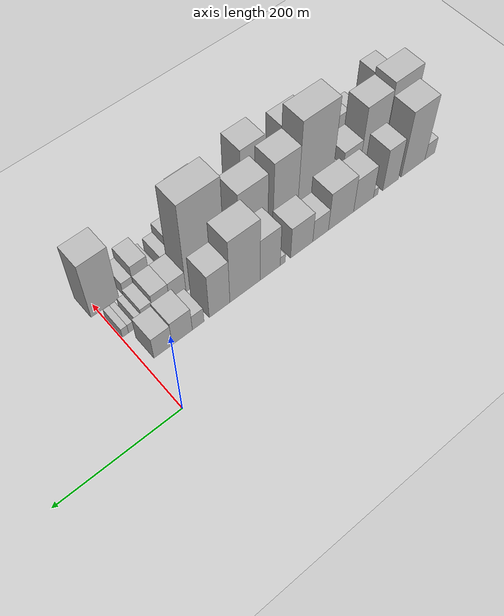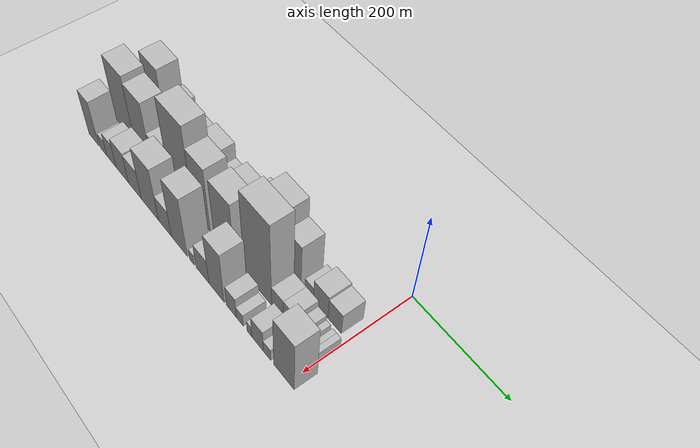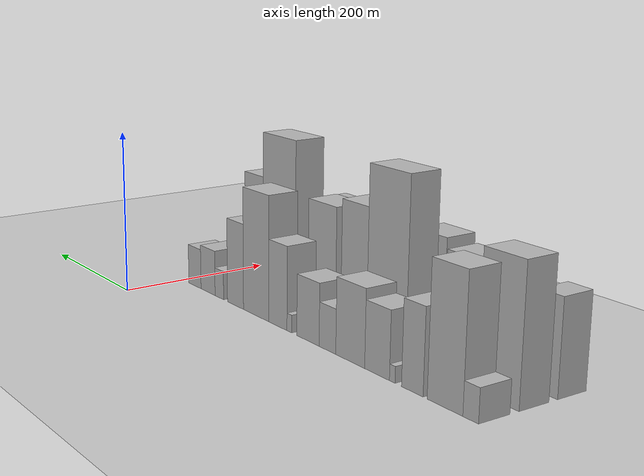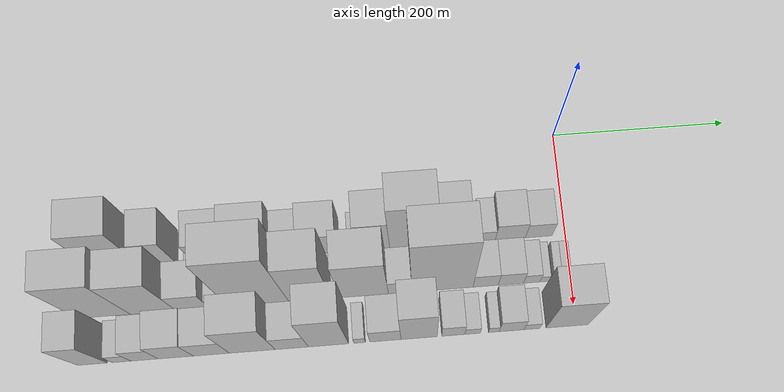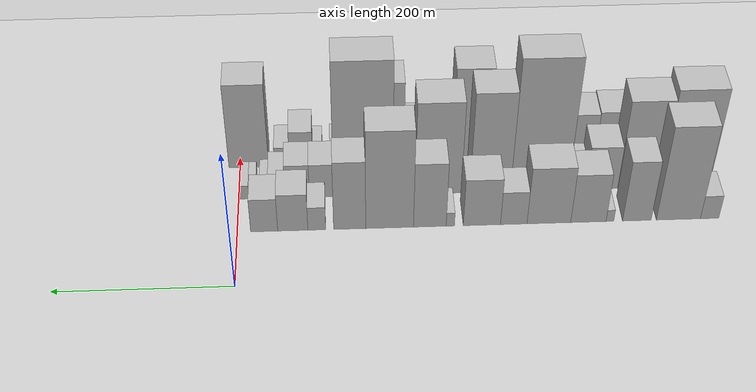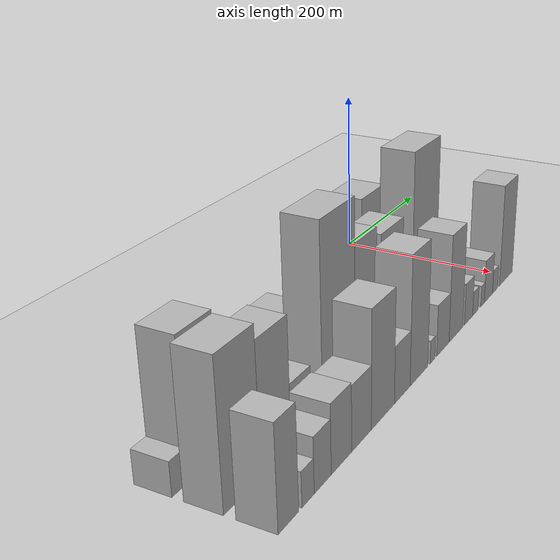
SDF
<sdf version="1.6">
 <world name="default">
  <include><name>ground_plane_1</name><uri>model://HANNAS_ground_plane</uri></include>
  <model name="building_1">
   <static>1</static>
   <pose>100.0000 -537.4205 0 0.000000 0.000000 0.000000</pose>
   <link name="link">
    <pose>0 0 18.00 0 0 0</pose>
    <collision name="collision"><geometry><box><size>40.0000 21.1590 36.0000</size></box></geometry></collision>
    <visual name="visual">
     <cast_shadows>0</cast_shadows>
     <geometry><box><size>40.0000 21.1590 36.0000</size></box></geometry>
     <material>
      <script>
       <uri>model://HANNAS_wall/materials/scripts</uri>
       <uri>model://HANNAS_wall/materials/textures</uri>
       <name>vrc/HANNAS_wall</name>
      </script>
     </material>
    </visual>
   </link>
  </model>
  <model name="building_2">
   <static>1</static>
   <pose>100.0000 -501.5422 0 0.000000 0.000000 0.000000</pose>
   <link name="link">
    <pose>0 0 72.00 0 0 0</pose>
    <collision name="collision"><geometry><box><size>40.0000 50.5977 144.0000</size></box></geometry></collision>
    <visual name="visual">
     <cast_shadows>0</cast_shadows>
     <geometry><box><size>40.0000 50.5977 144.0000</size></box></geometry>
     <material>
      <script>
       <uri>model://HANNAS_wall/materials/scripts</uri>
       <uri>model://HANNAS_wall/materials/textures</uri>
       <name>vrc/HANNAS_wall</name>
      </script>
     </material>
    </visual>
   </link>
  </model>
  <model name="building_3">
   <static>1</static>
   <pose>100.0000 -453.8907 0 0.000000 0.000000 0.000000</pose>
   <link name="link">
    <pose>0 0 46.50 0 0 0</pose>
    <collision name="collision"><geometry><box><size>40.0000 32.7053 93.0000</size></box></geometry></collision>
    <visual name="visual">
     <cast_shadows>0</cast_shadows>
     <geometry><box><size>40.0000 32.7053 93.0000</size></box></geometry>
     <material>
      <script>
       <uri>model://HANNAS_wall/materials/scripts</uri>
       <uri>model://HANNAS_wall/materials/textures</uri>
       <name>vrc/HANNAS_wall</name>
      </script>
     </material>
    </visual>
   </link>
  </model>
  <model name="building_4">
   <static>1</static>
   <pose>100.0000 -423.0930 0 0.000000 0.000000 0.000000</pose>
   <link name="link">
    <pose>0 0 9.00 0 0 0</pose>
    <collision name="collision"><geometry><box><size>40.0000 8.8902 18.0000</size></box></geometry></collision>
    <visual name="visual">
     <cast_shadows>0</cast_shadows>
     <geometry><box><size>40.0000 8.8902 18.0000</size></box></geometry>
     <material>
      <script>
       <uri>model://HANNAS_wall/materials/scripts</uri>
       <uri>model://HANNAS_wall/materials/textures</uri>
       <name>vrc/HANNAS_wall</name>
      </script>
     </material>
    </visual>
   </link>
  </model>
  <model name="building_5">
   <static>1</static>
   <pose>100.0000 -398.4625 0 0.000000 0.000000 0.000000</pose>
   <link name="link">
    <pose>0 0 37.50 0 0 0</pose>
    <collision name="collision"><geometry><box><size>40.0000 40.3708 75.0000</size></box></geometry></collision>
    <visual name="visual">
     <cast_shadows>0</cast_shadows>
     <geometry><box><size>40.0000 40.3708 75.0000</size></box></geometry>
     <material>
      <script>
       <uri>model://HANNAS_wall/materials/scripts</uri>
       <uri>model://HANNAS_wall/materials/textures</uri>
       <name>vrc/HANNAS_wall</name>
      </script>
     </material>
    </visual>
   </link>
  </model>
  <model name="building_6">
   <static>1</static>
   <pose>100.0000 -353.3126 0 0.000000 0.000000 0.000000</pose>
   <link name="link">
    <pose>0 0 43.50 0 0 0</pose>
    <collision name="collision"><geometry><box><size>40.0000 49.9289 87.0000</size></box></geometry></collision>
    <visual name="visual">
     <cast_shadows>0</cast_shadows>
     <geometry><box><size>40.0000 49.9289 87.0000</size></box></geometry>
     <material>
      <script>
       <uri>model://HANNAS_wall/materials/scripts</uri>
       <uri>model://HANNAS_wall/materials/textures</uri>
       <name>vrc/HANNAS_wall</name>
      </script>
     </material>
    </visual>
   </link>
  </model>
  <model name="building_7">
   <static>1</static>
   <pose>100.0000 -313.2135 0 0.000000 0.000000 0.000000</pose>
   <link name="link">
    <pose>0 0 25.50 0 0 0</pose>
    <collision name="collision"><geometry><box><size>40.0000 30.2694 51.0000</size></box></geometry></collision>
    <visual name="visual">
     <cast_shadows>0</cast_shadows>
     <geometry><box><size>40.0000 30.2694 51.0000</size></box></geometry>
     <material>
      <script>
       <uri>model://HANNAS_wall/materials/scripts</uri>
       <uri>model://HANNAS_wall/materials/textures</uri>
       <name>vrc/HANNAS_wall</name>
      </script>
     </material>
    </visual>
   </link>
  </model>
  <model name="building_8">
   <static>1</static>
   <pose>100.0000 -276.9280 0 0.000000 0.000000 0.000000</pose>
   <link name="link">
    <pose>0 0 36.00 0 0 0</pose>
    <collision name="collision"><geometry><box><size>40.0000 42.3017 72.0000</size></box></geometry></collision>
    <visual name="visual">
     <cast_shadows>0</cast_shadows>
     <geometry><box><size>40.0000 42.3017 72.0000</size></box></geometry>
     <material>
      <script>
       <uri>model://HANNAS_wall/materials/scripts</uri>
       <uri>model://HANNAS_wall/materials/textures</uri>
       <name>vrc/HANNAS_wall</name>
      </script>
     </material>
    </visual>
   </link>
  </model>
  <model name="building_9">
   <static>1</static>
   <pose>100.0000 -241.0369 0 0.000000 0.000000 0.000000</pose>
   <link name="link">
    <pose>0 0 10.50 0 0 0</pose>
    <collision name="collision"><geometry><box><size>40.0000 9.4805 21.0000</size></box></geometry></collision>
    <visual name="visual">
     <cast_shadows>0</cast_shadows>
     <geometry><box><size>40.0000 9.4805 21.0000</size></box></geometry>
     <material>
      <script>
       <uri>model://HANNAS_wall/materials/scripts</uri>
       <uri>model://HANNAS_wall/materials/textures</uri>
       <name>vrc/HANNAS_wall</name>
      </script>
     </material>
    </visual>
   </link>
  </model>
  <model name="building_10">
   <static>1</static>
   <pose>100.0000 -217.7313 0 0.000000 0.000000 0.000000</pose>
   <link name="link">
    <pose>0 0 49.50 0 0 0</pose>
    <collision name="collision"><geometry><box><size>40.0000 37.1306 99.0000</size></box></geometry></collision>
    <visual name="visual">
     <cast_shadows>0</cast_shadows>
     <geometry><box><size>40.0000 37.1306 99.0000</size></box></geometry>
     <material>
      <script>
       <uri>model://HANNAS_wall/materials/scripts</uri>
       <uri>model://HANNAS_wall/materials/textures</uri>
       <name>vrc/HANNAS_wall</name>
      </script>
     </material>
    </visual>
   </link>
  </model>
  <model name="building_11">
   <static>1</static>
   <pose>100.0000 -172.0559 0 0.000000 0.000000 0.000000</pose>
   <link name="link">
    <pose>0 0 75.00 0 0 0</pose>
    <collision name="collision"><geometry><box><size>40.0000 54.2202 150.0000</size></box></geometry></collision>
    <visual name="visual">
     <cast_shadows>0</cast_shadows>
     <geometry><box><size>40.0000 54.2202 150.0000</size></box></geometry>
     <material>
      <script>
       <uri>model://HANNAS_wall/materials/scripts</uri>
       <uri>model://HANNAS_wall/materials/textures</uri>
       <name>vrc/HANNAS_wall</name>
      </script>
     </material>
    </visual>
   </link>
  </model>
  <model name="building_12">
   <static>1</static>
   <pose>100.0000 -126.8319 0 0.000000 0.000000 0.000000</pose>
   <link name="link">
    <pose>0 0 52.50 0 0 0</pose>
    <collision name="collision"><geometry><box><size>40.0000 36.2277 105.0000</size></box></geometry></collision>
    <visual name="visual">
     <cast_shadows>0</cast_shadows>
     <geometry><box><size>40.0000 36.2277 105.0000</size></box></geometry>
     <material>
      <script>
       <uri>model://HANNAS_wall/materials/scripts</uri>
       <uri>model://HANNAS_wall/materials/textures</uri>
       <name>vrc/HANNAS_wall</name>
      </script>
     </material>
    </visual>
   </link>
  </model>
  <model name="building_13">
   <static>1</static>
   <pose>100.0000 -89.6416 0 0.000000 0.000000 0.000000</pose>
   <link name="link">
    <pose>0 0 18.00 0 0 0</pose>
    <collision name="collision"><geometry><box><size>40.0000 20.1530 36.0000</size></box></geometry></collision>
    <visual name="visual">
     <cast_shadows>0</cast_shadows>
     <geometry><box><size>40.0000 20.1530 36.0000</size></box></geometry>
     <material>
      <script>
       <uri>model://HANNAS_wall/materials/scripts</uri>
       <uri>model://HANNAS_wall/materials/textures</uri>
       <name>vrc/HANNAS_wall</name>
      </script>
     </material>
    </visual>
   </link>
  </model>
  <model name="building_14">
   <static>1</static>
   <pose>100.0000 -62.5326 0 0.000000 0.000000 0.000000</pose>
   <link name="link">
    <pose>0 0 28.50 0 0 0</pose>
    <collision name="collision"><geometry><box><size>40.0000 34.0651 57.0000</size></box></geometry></collision>
    <visual name="visual">
     <cast_shadows>0</cast_shadows>
     <geometry><box><size>40.0000 34.0651 57.0000</size></box></geometry>
     <material>
      <script>
       <uri>model://HANNAS_wall/materials/scripts</uri>
       <uri>model://HANNAS_wall/materials/textures</uri>
       <name>vrc/HANNAS_wall</name>
      </script>
     </material>
    </visual>
   </link>
  </model>
  <model name="building_15">
   <static>1</static>
   <pose>100.0000 -30.2260 0 0.000000 0.000000 0.000000</pose>
   <link name="link">
    <pose>0 0 25.50 0 0 0</pose>
    <collision name="collision"><geometry><box><size>40.0000 30.5481 51.0000</size></box></geometry></collision>
    <visual name="visual">
     <cast_shadows>0</cast_shadows>
     <geometry><box><size>40.0000 30.5481 51.0000</size></box></geometry>
     <material>
      <script>
       <uri>model://HANNAS_wall/materials/scripts</uri>
       <uri>model://HANNAS_wall/materials/textures</uri>
       <name>vrc/HANNAS_wall</name>
      </script>
     </material>
    </visual>
   </link>
  </model>
  <model name="building_32">
   <static>1</static>
   <pose>152.0000 -519.5265 0 0.000000 0.000000 0.000000</pose>
   <link name="link">
    <pose>0 0 75.00 0 0 0</pose>
    <collision name="collision"><geometry><box><size>40.0000 56.9471 150.0000</size></box></geometry></collision>
    <visual name="visual">
     <cast_shadows>0</cast_shadows>
     <geometry><box><size>40.0000 56.9471 150.0000</size></box></geometry>
     <material>
      <script>
       <uri>model://HANNAS_wall/materials/scripts</uri>
       <uri>model://HANNAS_wall/materials/textures</uri>
       <name>vrc/HANNAS_wall</name>
      </script>
     </material>
    </visual>
   </link>
  </model>
  <model name="building_33">
   <static>1</static>
   <pose>152.0000 -465.7138 0 0.000000 0.000000 0.000000</pose>
   <link name="link">
    <pose>0 0 67.50 0 0 0</pose>
    <collision name="collision"><geometry><box><size>40.0000 50.6783 135.0000</size></box></geometry></collision>
    <visual name="visual">
     <cast_shadows>0</cast_shadows>
     <geometry><box><size>40.0000 50.6783 135.0000</size></box></geometry>
     <material>
      <script>
       <uri>model://HANNAS_wall/materials/scripts</uri>
       <uri>model://HANNAS_wall/materials/textures</uri>
       <name>vrc/HANNAS_wall</name>
      </script>
     </material>
    </visual>
   </link>
  </model>
  <model name="building_34">
   <static>1</static>
   <pose>152.0000 -421.8914 0 0.000000 0.000000 0.000000</pose>
   <link name="link">
    <pose>0 0 33.00 0 0 0</pose>
    <collision name="collision"><geometry><box><size>40.0000 36.9664 66.0000</size></box></geometry></collision>
    <visual name="visual">
     <cast_shadows>0</cast_shadows>
     <geometry><box><size>40.0000 36.9664 66.0000</size></box></geometry>
     <material>
      <script>
       <uri>model://HANNAS_wall/materials/scripts</uri>
       <uri>model://HANNAS_wall/materials/textures</uri>
       <name>vrc/HANNAS_wall</name>
      </script>
     </material>
    </visual>
   </link>
  </model>
  <model name="building_35">
   <static>1</static>
   <pose>152.0000 -392.8141 0 0.000000 0.000000 0.000000</pose>
   <link name="link">
    <pose>0 0 18.00 0 0 0</pose>
    <collision name="collision"><geometry><box><size>40.0000 21.1882 36.0000</size></box></geometry></collision>
    <visual name="visual">
     <cast_shadows>0</cast_shadows>
     <geometry><box><size>40.0000 21.1882 36.0000</size></box></geometry>
     <material>
      <script>
       <uri>model://HANNAS_wall/materials/scripts</uri>
       <uri>model://HANNAS_wall/materials/textures</uri>
       <name>vrc/HANNAS_wall</name>
      </script>
     </material>
    </visual>
   </link>
  </model>
  <model name="building_36">
   <static>1</static>
   <pose>152.0000 -348.6404 0 0.000000 0.000000 0.000000</pose>
   <link name="link">
    <pose>0 0 100.50 0 0 0</pose>
    <collision name="collision"><geometry><box><size>40.0000 67.1592 201.0000</size></box></geometry></collision>
    <visual name="visual">
     <cast_shadows>0</cast_shadows>
     <geometry><box><size>40.0000 67.1592 201.0000</size></box></geometry>
     <material>
      <script>
       <uri>model://HANNAS_wall/materials/scripts</uri>
       <uri>model://HANNAS_wall/materials/textures</uri>
       <name>vrc/HANNAS_wall</name>
      </script>
     </material>
    </visual>
   </link>
  </model>
  <model name="building_37">
   <static>1</static>
   <pose>152.0000 -291.4726 0 0.000000 0.000000 0.000000</pose>
   <link name="link">
    <pose>0 0 76.50 0 0 0</pose>
    <collision name="collision"><geometry><box><size>40.0000 47.1764 153.0000</size></box></geometry></collision>
    <visual name="visual">
     <cast_shadows>0</cast_shadows>
     <geometry><box><size>40.0000 47.1764 153.0000</size></box></geometry>
     <material>
      <script>
       <uri>model://HANNAS_wall/materials/scripts</uri>
       <uri>model://HANNAS_wall/materials/textures</uri>
       <name>vrc/HANNAS_wall</name>
      </script>
     </material>
    </visual>
   </link>
  </model>
  <model name="building_38">
   <static>1</static>
   <pose>152.0000 -231.1122 0 0.000000 0.000000 0.000000</pose>
   <link name="link">
    <pose>0 0 70.50 0 0 0</pose>
    <collision name="collision"><geometry><box><size>40.0000 53.5444 141.0000</size></box></geometry></collision>
    <visual name="visual">
     <cast_shadows>0</cast_shadows>
     <geometry><box><size>40.0000 53.5444 141.0000</size></box></geometry>
     <material>
      <script>
       <uri>model://HANNAS_wall/materials/scripts</uri>
       <uri>model://HANNAS_wall/materials/textures</uri>
       <name>vrc/HANNAS_wall</name>
      </script>
     </material>
    </visual>
   </link>
  </model>
  <model name="building_39">
   <static>1</static>
   <pose>152.0000 -191.2110 0 0.000000 0.000000 0.000000</pose>
   <link name="link">
    <pose>0 0 25.50 0 0 0</pose>
    <collision name="collision"><geometry><box><size>40.0000 26.2582 51.0000</size></box></geometry></collision>
    <visual name="visual">
     <cast_shadows>0</cast_shadows>
     <geometry><box><size>40.0000 26.2582 51.0000</size></box></geometry>
     <material>
      <script>
       <uri>model://HANNAS_wall/materials/scripts</uri>
       <uri>model://HANNAS_wall/materials/textures</uri>
       <name>vrc/HANNAS_wall</name>
      </script>
     </material>
    </visual>
   </link>
  </model>
  <model name="building_40">
   <static>1</static>
   <pose>152.0000 -143.9332 0 0.000000 0.000000 0.000000</pose>
   <link name="link">
    <pose>0 0 102.00 0 0 0</pose>
    <collision name="collision"><geometry><box><size>40.0000 68.2973 204.0000</size></box></geometry></collision>
    <visual name="visual">
     <cast_shadows>0</cast_shadows>
     <geometry><box><size>40.0000 68.2973 204.0000</size></box></geometry>
     <material>
      <script>
       <uri>model://HANNAS_wall/materials/scripts</uri>
       <uri>model://HANNAS_wall/materials/textures</uri>
       <name>vrc/HANNAS_wall</name>
      </script>
     </material>
    </visual>
   </link>
  </model>
  <model name="building_41">
   <static>1</static>
   <pose>152.0000 -95.7127 0 0.000000 0.000000 0.000000</pose>
   <link name="link">
    <pose>0 0 25.50 0 0 0</pose>
    <collision name="collision"><geometry><box><size>40.0000 28.1436 51.0000</size></box></geometry></collision>
    <visual name="visual">
     <cast_shadows>0</cast_shadows>
     <geometry><box><size>40.0000 28.1436 51.0000</size></box></geometry>
     <material>
      <script>
       <uri>model://HANNAS_wall/materials/scripts</uri>
       <uri>model://HANNAS_wall/materials/textures</uri>
       <name>vrc/HANNAS_wall</name>
      </script>
     </material>
    </visual>
   </link>
  </model>
  <model name="building_42">
   <static>1</static>
   <pose>152.0000 -67.5133 0 0.000000 0.000000 0.000000</pose>
   <link name="link">
    <pose>0 0 25.50 0 0 0</pose>
    <collision name="collision"><geometry><box><size>40.0000 28.2553 51.0000</size></box></geometry></collision>
    <visual name="visual">
     <cast_shadows>0</cast_shadows>
     <geometry><box><size>40.0000 28.2553 51.0000</size></box></geometry>
     <material>
      <script>
       <uri>model://HANNAS_wall/materials/scripts</uri>
       <uri>model://HANNAS_wall/materials/textures</uri>
       <name>vrc/HANNAS_wall</name>
      </script>
     </material>
    </visual>
   </link>
  </model>
  <model name="building_43">
   <static>1</static>
   <pose>152.0000 -44.1064 0 0.000000 0.000000 0.000000</pose>
   <link name="link">
    <pose>0 0 18.00 0 0 0</pose>
    <collision name="collision"><geometry><box><size>40.0000 18.5585 36.0000</size></box></geometry></collision>
    <visual name="visual">
     <cast_shadows>0</cast_shadows>
     <geometry><box><size>40.0000 18.5585 36.0000</size></box></geometry>
     <material>
      <script>
       <uri>model://HANNAS_wall/materials/scripts</uri>
       <uri>model://HANNAS_wall/materials/textures</uri>
       <name>vrc/HANNAS_wall</name>
      </script>
     </material>
    </visual>
   </link>
  </model>
  <model name="building_44">
   <static>1</static>
   <pose>152.0000 -29.7341 0 0.000000 0.000000 0.000000</pose>
   <link name="link">
    <pose>0 0 12.00 0 0 0</pose>
    <collision name="collision"><geometry><box><size>40.0000 10.1861 24.0000</size></box></geometry></collision>
    <visual name="visual">
     <cast_shadows>0</cast_shadows>
     <geometry><box><size>40.0000 10.1861 24.0000</size></box></geometry>
     <material>
      <script>
       <uri>model://HANNAS_wall/materials/scripts</uri>
       <uri>model://HANNAS_wall/materials/textures</uri>
       <name>vrc/HANNAS_wall</name>
      </script>
     </material>
    </visual>
   </link>
  </model>
  <model name="building_45">
   <static>1</static>
   <pose>152.0000 -16.1836 0 0.000000 0.000000 0.000000</pose>
   <link name="link">
    <pose>0 0 10.50 0 0 0</pose>
    <collision name="collision"><geometry><box><size>40.0000 8.9149 21.0000</size></box></geometry></collision>
    <visual name="visual">
     <cast_shadows>0</cast_shadows>
     <geometry><box><size>40.0000 8.9149 21.0000</size></box></geometry>
     <material>
      <script>
       <uri>model://HANNAS_wall/materials/scripts</uri>
       <uri>model://HANNAS_wall/materials/textures</uri>
       <name>vrc/HANNAS_wall</name>
      </script>
     </material>
    </visual>
   </link>
  </model>
  <model name="building_46">
   <static>1</static>
   <pose>152.0000 -6.5822 0 0.000000 0.000000 0.000000</pose>
   <link name="link">
    <pose>0 0 10.50 0 0 0</pose>
    <collision name="collision"><geometry><box><size>40.0000 10.2880 21.0000</size></box></geometry></collision>
    <visual name="visual">
     <cast_shadows>0</cast_shadows>
     <geometry><box><size>40.0000 10.2880 21.0000</size></box></geometry>
     <material>
      <script>
       <uri>model://HANNAS_wall/materials/scripts</uri>
       <uri>model://HANNAS_wall/materials/textures</uri>
       <name>vrc/HANNAS_wall</name>
      </script>
     </material>
    </visual>
   </link>
  </model>
  <model name="building_63">
   <static>1</static>
   <pose>204.0000 -531.7931 0 0.000000 0.000000 0.000000</pose>
   <link name="link">
    <pose>0 0 52.50 0 0 0</pose>
    <collision name="collision"><geometry><box><size>40.0000 32.4138 105.0000</size></box></geometry></collision>
    <visual name="visual">
     <cast_shadows>0</cast_shadows>
     <geometry><box><size>40.0000 32.4138 105.0000</size></box></geometry>
     <material>
      <script>
       <uri>model://HANNAS_wall/materials/scripts</uri>
       <uri>model://HANNAS_wall/materials/textures</uri>
       <name>vrc/HANNAS_wall</name>
      </script>
     </material>
    </visual>
   </link>
  </model>
  <model name="building_64">
   <static>1</static>
   <pose>204.0000 -500.2634 0 0.000000 0.000000 0.000000</pose>
   <link name="link">
    <pose>0 0 18.00 0 0 0</pose>
    <collision name="collision"><geometry><box><size>40.0000 20.6455 36.0000</size></box></geometry></collision>
    <visual name="visual">
     <cast_shadows>0</cast_shadows>
     <geometry><box><size>40.0000 20.6455 36.0000</size></box></geometry>
     <material>
      <script>
       <uri>model://HANNAS_wall/materials/scripts</uri>
       <uri>model://HANNAS_wall/materials/textures</uri>
       <name>vrc/HANNAS_wall</name>
      </script>
     </material>
    </visual>
   </link>
  </model>
  <model name="building_65">
   <static>1</static>
   <pose>204.0000 -475.0415 0 0.000000 0.000000 0.000000</pose>
   <link name="link">
    <pose>0 0 28.50 0 0 0</pose>
    <collision name="collision"><geometry><box><size>40.0000 29.7982 57.0000</size></box></geometry></collision>
    <visual name="visual">
     <cast_shadows>0</cast_shadows>
     <geometry><box><size>40.0000 29.7982 57.0000</size></box></geometry>
     <material>
      <script>
       <uri>model://HANNAS_wall/materials/scripts</uri>
       <uri>model://HANNAS_wall/materials/textures</uri>
       <name>vrc/HANNAS_wall</name>
      </script>
     </material>
    </visual>
   </link>
  </model>
  <model name="building_66">
   <static>1</static>
   <pose>204.0000 -441.0615 0 0.000000 0.000000 0.000000</pose>
   <link name="link">
    <pose>0 0 36.00 0 0 0</pose>
    <collision name="collision"><geometry><box><size>40.0000 38.1619 72.0000</size></box></geometry></collision>
    <visual name="visual">
     <cast_shadows>0</cast_shadows>
     <geometry><box><size>40.0000 38.1619 72.0000</size></box></geometry>
     <material>
      <script>
       <uri>model://HANNAS_wall/materials/scripts</uri>
       <uri>model://HANNAS_wall/materials/textures</uri>
       <name>vrc/HANNAS_wall</name>
      </script>
     </material>
    </visual>
   </link>
  </model>
  <model name="building_67">
   <static>1</static>
   <pose>204.0000 -402.2649 0 0.000000 0.000000 0.000000</pose>
   <link name="link">
    <pose>0 0 34.50 0 0 0</pose>
    <collision name="collision"><geometry><box><size>40.0000 39.4311 69.0000</size></box></geometry></collision>
    <visual name="visual">
     <cast_shadows>0</cast_shadows>
     <geometry><box><size>40.0000 39.4311 69.0000</size></box></geometry>
     <material>
      <script>
       <uri>model://HANNAS_wall/materials/scripts</uri>
       <uri>model://HANNAS_wall/materials/textures</uri>
       <name>vrc/HANNAS_wall</name>
      </script>
     </material>
    </visual>
   </link>
  </model>
  <model name="building_68">
   <static>1</static>
   <pose>204.0000 -357.4596 0 0.000000 0.000000 0.000000</pose>
   <link name="link">
    <pose>0 0 63.00 0 0 0</pose>
    <collision name="collision"><geometry><box><size>40.0000 50.1795 126.0000</size></box></geometry></collision>
    <visual name="visual">
     <cast_shadows>0</cast_shadows>
     <geometry><box><size>40.0000 50.1795 126.0000</size></box></geometry>
     <material>
      <script>
       <uri>model://HANNAS_wall/materials/scripts</uri>
       <uri>model://HANNAS_wall/materials/textures</uri>
       <name>vrc/HANNAS_wall</name>
      </script>
     </material>
    </visual>
   </link>
  </model>
  <model name="building_69">
   <static>1</static>
   <pose>204.0000 -314.0907 0 0.000000 0.000000 0.000000</pose>
   <link name="link">
    <pose>0 0 31.50 0 0 0</pose>
    <collision name="collision"><geometry><box><size>40.0000 36.5584 63.0000</size></box></geometry></collision>
    <visual name="visual">
     <cast_shadows>0</cast_shadows>
     <geometry><box><size>40.0000 36.5584 63.0000</size></box></geometry>
     <material>
      <script>
       <uri>model://HANNAS_wall/materials/scripts</uri>
       <uri>model://HANNAS_wall/materials/textures</uri>
       <name>vrc/HANNAS_wall</name>
      </script>
     </material>
    </visual>
   </link>
  </model>
  <model name="building_70">
   <static>1</static>
   <pose>204.0000 -273.7451 0 0.000000 0.000000 0.000000</pose>
   <link name="link">
    <pose>0 0 72.00 0 0 0</pose>
    <collision name="collision"><geometry><box><size>40.0000 44.1327 144.0000</size></box></geometry></collision>
    <visual name="visual">
     <cast_shadows>0</cast_shadows>
     <geometry><box><size>40.0000 44.1327 144.0000</size></box></geometry>
     <material>
      <script>
       <uri>model://HANNAS_wall/materials/scripts</uri>
       <uri>model://HANNAS_wall/materials/textures</uri>
       <name>vrc/HANNAS_wall</name>
      </script>
     </material>
    </visual>
   </link>
  </model>
  <model name="building_71">
   <static>1</static>
   <pose>204.0000 -239.4206 0 0.000000 0.000000 0.000000</pose>
   <link name="link">
    <pose>0 0 13.50 0 0 0</pose>
    <collision name="collision"><geometry><box><size>40.0000 12.5163 27.0000</size></box></geometry></collision>
    <visual name="visual">
     <cast_shadows>0</cast_shadows>
     <geometry><box><size>40.0000 12.5163 27.0000</size></box></geometry>
     <material>
      <script>
       <uri>model://HANNAS_wall/materials/scripts</uri>
       <uri>model://HANNAS_wall/materials/textures</uri>
       <name>vrc/HANNAS_wall</name>
      </script>
     </material>
    </visual>
   </link>
  </model>
  <model name="building_72">
   <static>1</static>
   <pose>204.0000 -211.0619 0 0.000000 0.000000 0.000000</pose>
   <link name="link">
    <pose>0 0 30.00 0 0 0</pose>
    <collision name="collision"><geometry><box><size>40.0000 34.2012 60.0000</size></box></geometry></collision>
    <visual name="visual">
     <cast_shadows>0</cast_shadows>
     <geometry><box><size>40.0000 34.2012 60.0000</size></box></geometry>
     <material>
      <script>
       <uri>model://HANNAS_wall/materials/scripts</uri>
       <uri>model://HANNAS_wall/materials/textures</uri>
       <name>vrc/HANNAS_wall</name>
      </script>
     </material>
    </visual>
   </link>
  </model>
  <model name="building_73">
   <static>1</static>
   <pose>204.0000 -174.0623 0 0.000000 0.000000 0.000000</pose>
   <link name="link">
    <pose>0 0 63.00 0 0 0</pose>
    <collision name="collision"><geometry><box><size>40.0000 39.7980 126.0000</size></box></geometry></collision>
    <visual name="visual">
     <cast_shadows>0</cast_shadows>
     <geometry><box><size>40.0000 39.7980 126.0000</size></box></geometry>
     <material>
      <script>
       <uri>model://HANNAS_wall/materials/scripts</uri>
       <uri>model://HANNAS_wall/materials/textures</uri>
       <name>vrc/HANNAS_wall</name>
      </script>
     </material>
    </visual>
   </link>
  </model>
  <model name="building_74">
   <static>1</static>
   <pose>204.0000 -136.4068 0 0.000000 0.000000 0.000000</pose>
   <link name="link">
    <pose>0 0 25.50 0 0 0</pose>
    <collision name="collision"><geometry><box><size>40.0000 25.5130 51.0000</size></box></geometry></collision>
    <visual name="visual">
     <cast_shadows>0</cast_shadows>
     <geometry><box><size>40.0000 25.5130 51.0000</size></box></geometry>
     <material>
      <script>
       <uri>model://HANNAS_wall/materials/scripts</uri>
       <uri>model://HANNAS_wall/materials/textures</uri>
       <name>vrc/HANNAS_wall</name>
      </script>
     </material>
    </visual>
   </link>
  </model>
  <model name="building_75">
   <static>1</static>
   <pose>204.0000 -115.1076 0 0.000000 0.000000 0.000000</pose>
   <link name="link">
    <pose>0 0 15.00 0 0 0</pose>
    <collision name="collision"><geometry><box><size>40.0000 17.0853 30.0000</size></box></geometry></collision>
    <visual name="visual">
     <cast_shadows>0</cast_shadows>
     <geometry><box><size>40.0000 17.0853 30.0000</size></box></geometry>
     <material>
      <script>
       <uri>model://HANNAS_wall/materials/scripts</uri>
       <uri>model://HANNAS_wall/materials/textures</uri>
       <name>vrc/HANNAS_wall</name>
      </script>
     </material>
    </visual>
   </link>
  </model>
  <model name="building_76">
   <static>1</static>
   <pose>204.0000 -91.7930 0 0.000000 0.000000 0.000000</pose>
   <link name="link">
    <pose>0 0 13.50 0 0 0</pose>
    <collision name="collision"><geometry><box><size>40.0000 11.5440 27.0000</size></box></geometry></collision>
    <visual name="visual">
     <cast_shadows>0</cast_shadows>
     <geometry><box><size>40.0000 11.5440 27.0000</size></box></geometry>
     <material>
      <script>
       <uri>model://HANNAS_wall/materials/scripts</uri>
       <uri>model://HANNAS_wall/materials/textures</uri>
       <name>vrc/HANNAS_wall</name>
      </script>
     </material>
    </visual>
   </link>
  </model>
  <model name="building_77">
   <static>1</static>
   <pose>204.0000 -72.2627 0 0.000000 0.000000 0.000000</pose>
   <link name="link">
    <pose>0 0 27.00 0 0 0</pose>
    <collision name="collision"><geometry><box><size>40.0000 27.5167 54.0000</size></box></geometry></collision>
    <visual name="visual">
     <cast_shadows>0</cast_shadows>
     <geometry><box><size>40.0000 27.5167 54.0000</size></box></geometry>
     <material>
      <script>
       <uri>model://HANNAS_wall/materials/scripts</uri>
       <uri>model://HANNAS_wall/materials/textures</uri>
       <name>vrc/HANNAS_wall</name>
      </script>
     </material>
    </visual>
   </link>
  </model>
  <model name="building_78">
   <static>1</static>
   <pose>204.0000 -49.6089 0 0.000000 0.000000 0.000000</pose>
   <link name="link">
    <pose>0 0 15.00 0 0 0</pose>
    <collision name="collision"><geometry><box><size>40.0000 17.7908 30.0000</size></box></geometry></collision>
    <visual name="visual">
     <cast_shadows>0</cast_shadows>
     <geometry><box><size>40.0000 17.7908 30.0000</size></box></geometry>
     <material>
      <script>
       <uri>model://HANNAS_wall/materials/scripts</uri>
       <uri>model://HANNAS_wall/materials/textures</uri>
       <name>vrc/HANNAS_wall</name>
      </script>
     </material>
    </visual>
   </link>
  </model>
  <model name="building_79">
   <static>1</static>
   <pose>204.0000 -10.3114 0 0.000000 0.000000 0.000000</pose>
   <link name="link">
    <pose>0 0 64.50 0 0 0</pose>
    <collision name="collision"><geometry><box><size>40.0000 46.8042 129.0000</size></box></geometry></collision>
    <visual name="visual">
     <cast_shadows>0</cast_shadows>
     <geometry><box><size>40.0000 46.8042 129.0000</size></box></geometry>
     <material>
      <script>
       <uri>model://HANNAS_wall/materials/scripts</uri>
       <uri>model://HANNAS_wall/materials/textures</uri>
       <name>vrc/HANNAS_wall</name>
      </script>
     </material>
    </visual>
   </link>
  </model>
 </world>
</sdf>
